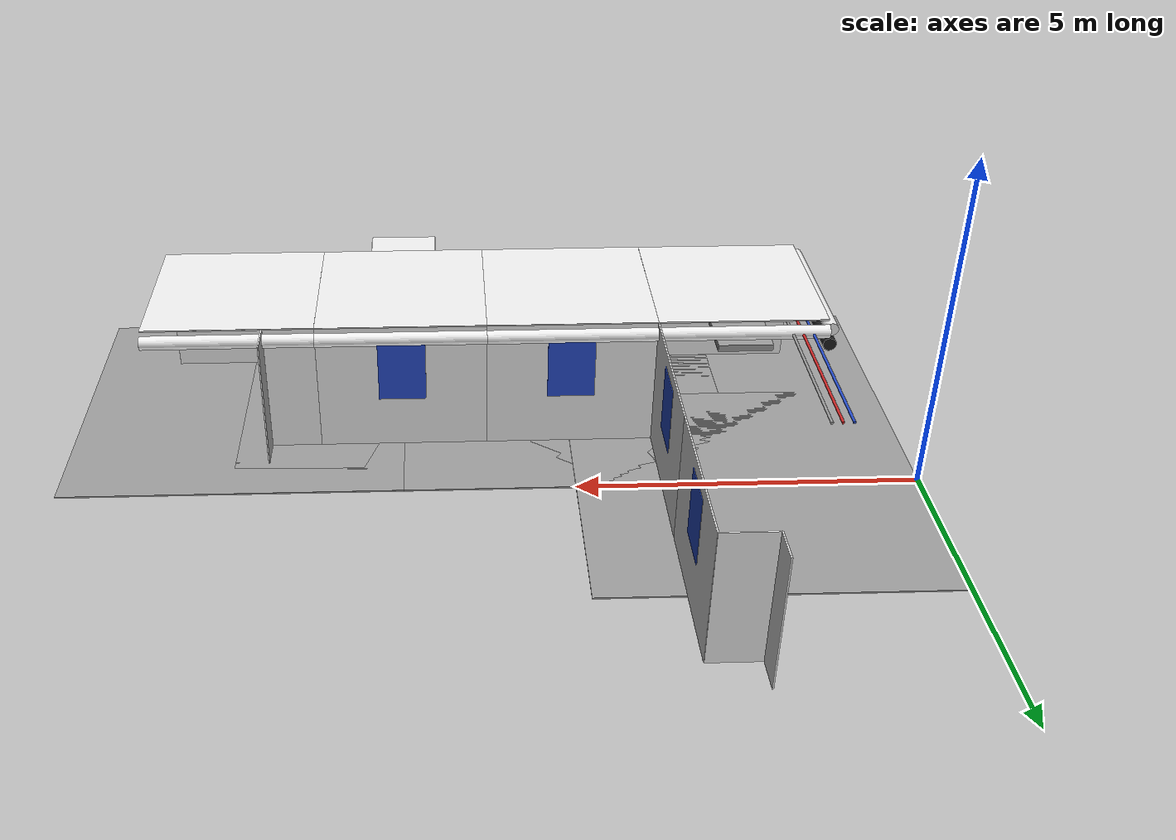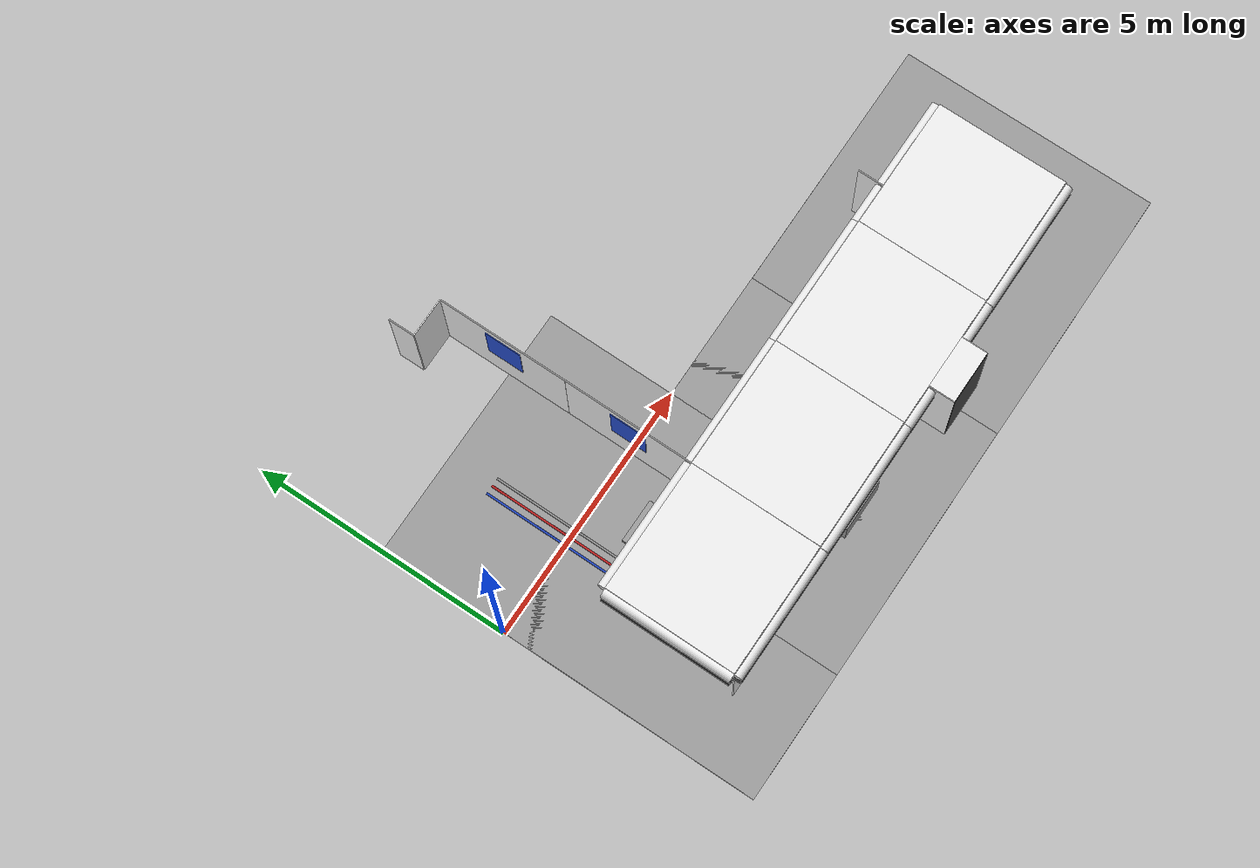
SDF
<sdf version="1.6">
 <world name="default">
  <model name="wall_front_1_1_0_2">
   <static>1</static>
   <pose>3.75 2.5 1.0 0.0 0.0 -1.57</pose>
   <link name="link">
    <collision name="collision"><geometry><box><size>2.5 0.02 2.0</size></box></geometry></collision>
    <visual name="visual">
     <material>
      <script><name>Gazebo/White</name><uri>file://media/materials/scripts/gazebo.material</uri></script>
     </material>
     <geometry><box><size>2.5 0.02 2.0</size></box></geometry>
    </visual>
   </link>
  </model>
  <model name="panel_1_1_0_2">
   <static>1</static>
   <pose>3.75 2.5 1.3 0.0 0.0 0.0</pose>
   <link name="link">
    <collision name="collision"><geometry><box><size>0.04 0.7 1</size></box></geometry></collision>
    <visual name="visual">
     <material>
      <script><name>Gazebo/Blue</name><uri>file://media/materials/scripts/gazebo.material</uri></script>
     </material>
     <geometry><box><size>0.04 0.7 1</size></box></geometry>
    </visual>
   </link>
  </model>
  <model name="wall_left_front_left_1_1_0_2">
   <static>1</static>
   <pose>3.375 3.75 1.0 0.0 0.0 0.0</pose>
   <link name="link">
    <collision name="collision"><geometry><box><size>0.75 0.02 2.0</size></box></geometry></collision>
    <visual name="visual">
     <material>
      <script><name>Gazebo/White</name><uri>file://media/materials/scripts/gazebo.material</uri></script>
     </material>
     <geometry><box><size>0.75 0.02 2.0</size></box></geometry>
    </visual>
   </link>
  </model>
  <model name="wall_left_inside_left_1_1_0_2">
   <static>1</static>
   <pose>3.0 4.0 1.0 0.0 0.0 -1.57</pose>
   <link name="link">
    <collision name="collision"><geometry><box><size>0.5 0.02 2</size></box></geometry></collision>
    <visual name="visual">
     <material>
      <script><name>Gazebo/White</name><uri>file://media/materials/scripts/gazebo.material</uri></script>
     </material>
     <geometry><box><size>0.5 0.02 2</size></box></geometry>
    </visual>
   </link>
  </model>
  <model name="wall_left_1_0_0_1">
   <static>1</static>
   <pose>3.75 0.0 1.0 0.0 0.0 4.71</pose>
   <link name="link">
    <collision name="collision"><geometry><box><size>2.5 0.02 2.0</size></box></geometry></collision>
    <visual name="visual">
     <material>
      <script><name>Gazebo/White</name><uri>file://media/materials/scripts/gazebo.material</uri></script>
     </material>
     <geometry><box><size>2.5 0.02 2.0</size></box></geometry>
    </visual>
   </link>
  </model>
  <model name="grey_pipe_right_1_0_0_1">
   <static>1</static>
   <pose>2.5 0.0 1.84 0.0 0.0 3.14</pose>
   <link name="link_0">
    <visual name="visual">
     <pose>0.7 0 0 1.57 0 0</pose>
     <geometry><cylinder><radius>0.02</radius><length>2.5</length></cylinder></geometry>
     <material>
      <script><uri>file://media/materials/scripts/gazebo.material</uri><name>Gazebo/Grey</name></script>
     </material>
    </visual>
    <collision name="collision">
     <pose>0.7 0 0 1.57 0 0</pose>
     <geometry><cylinder><radius>0.02</radius><length>2.5</length></cylinder></geometry>
    </collision>
   </link>
  </model>
  <model name="red_pipe_right_1_0_0_1">
   <static>1</static>
   <pose>2.5 0.0 1.84 0.0 0.0 3.14</pose>
   <link name="link_0">
    <visual name="visual">
     <pose>0.85 0 0 1.57 0 0</pose>
     <geometry><cylinder><radius>0.02</radius><length>2.5</length></cylinder></geometry>
     <material>
      <script><uri>file://media/materials/scripts/gazebo.material</uri><name>Gazebo/Red</name></script>
     </material>
    </visual>
    <collision name="collision">
     <pose>0.85 0 0 1.57 0 0</pose>
     <geometry><cylinder><radius>0.02</radius><length>2.5</length></cylinder></geometry>
    </collision>
   </link>
  </model>
  <model name="blue_pipe_right_1_0_0_1">
   <static>1</static>
   <pose>2.5 0.0 1.84 0.0 0.0 3.14</pose>
   <link name="link_0">
    <visual name="visual">
     <pose>1 0 0 1.57 0 0</pose>
     <geometry><cylinder><radius>0.02</radius><length>2.5</length></cylinder></geometry>
     <material>
      <script><uri>file://media/materials/scripts/gazebo.material</uri><name>Gazebo/Blue</name></script>
     </material>
    </visual>
    <collision name="collision">
     <pose>1 0 0 1.57 0 0</pose>
     <geometry><cylinder><radius>0.02</radius><length>2.5</length></cylinder></geometry>
    </collision>
   </link>
  </model>
  <model name="wall_bottom_1_0_0_1">
   <static>1</static>
   <pose>2.5 0.0 0.0 0.0 0.0 3.14</pose>
   <link name="link">
    <collision name="collision"><geometry><box><size>5.0 5.0 0.02</size></box></geometry></collision>
    <visual name="visual">
     <material>
      <script><name>Gazebo/Grey</name><uri>file://media/materials/scripts/gazebo.material</uri></script>
     </material>
     <geometry><box><size>5.0 5.0 0.02</size></box></geometry>
    </visual>
   </link>
  </model>
  <model name="panel_1_0_1_1">
   <static>1</static>
   <pose>3.75 0.0 1.3 0.0 0.0 3.14</pose>
   <link name="link">
    <collision name="collision"><geometry><box><size>0.04 0.7 1</size></box></geometry></collision>
    <visual name="visual">
     <material>
      <script><name>Gazebo/Blue</name><uri>file://media/materials/scripts/gazebo.material</uri></script>
     </material>
     <geometry><box><size>0.04 0.7 1</size></box></geometry>
    </visual>
   </link>
  </model>
  <model name="wall_front_1_-1_0_3">
   <static>1</static>
   <pose>2.5 -3.75 1.0 0.0 0.0 3.14</pose>
   <link name="link">
    <collision name="collision"><geometry><box><size>2.5 0.02 2.0</size></box></geometry></collision>
    <visual name="visual">
     <material>
      <script><name>Gazebo/White</name><uri>file://media/materials/scripts/gazebo.material</uri></script>
     </material>
     <geometry><box><size>2.5 0.02 2.0</size></box></geometry>
    </visual>
   </link>
  </model>
  <model name="wall_top_1_-1_0_3">
   <static>1</static>
   <pose>2.5 -2.5 2.0 1.57 0.0 3.14</pose>
   <link name="link">
    <collision name="collision"><geometry><box><size>2.5 0.02 2.5</size></box></geometry></collision>
    <visual name="visual">
     <material>
      <script><name>Gazebo/White</name><uri>file://media/materials/scripts/gazebo.material</uri></script>
     </material>
     <geometry><box><size>2.5 0.02 2.5</size></box></geometry>
    </visual>
   </link>
  </model>
  <model name="ceiling_1_1_-1_0_3">
   <pose>2.5 -1.5 1.7 0.0 0.0 3.14</pose>
   <link name="link_1">
    <visual name="visual">
     <geometry><box><size>0.8 1 0.1</size></box></geometry>
     <material>
      <script><uri>file://media/materials/scripts/gazebo.material</uri><name>Gazebo/Grey</name></script>
     </material>
    </visual>
    <collision name="collision"><geometry><box><size>0.8 1 0.1</size></box></geometry></collision>
   </link>
   <static>1</static>
  </model>
  <model name="ceiling_1_1_-1_1_3">
   <pose>3.5 -2.5 1.7 0.0 0.0 4.71</pose>
   <link name="link_1">
    <visual name="visual">
     <geometry><box><size>0.8 1 0.1</size></box></geometry>
     <material>
      <script><uri>file://media/materials/scripts/gazebo.material</uri><name>Gazebo/Grey</name></script>
     </material>
    </visual>
    <collision name="collision"><geometry><box><size>0.8 1 0.1</size></box></geometry></collision>
   </link>
   <static>1</static>
  </model>
  <model name="white_pipe_left_1_-1_0_3">
   <static>1</static>
   <pose>2.5 -2.5 1.84 0.0 0.0 3.14</pose>
   <link name="link_0">
    <visual name="visual">
     <pose>-1.3 0 0 1.57 0 0</pose>
     <geometry><cylinder><radius>0.1</radius><length>2.5</length></cylinder></geometry>
     <material>
      <script><uri>file://media/materials/scripts/gazebo.material</uri><name>Gazebo/White</name></script>
     </material>
    </visual>
    <collision name="collision">
     <pose>-1.3 0 0 1.57 0 0</pose>
     <geometry><cylinder><radius>0.1</radius><length>2.5</length></cylinder></geometry>
    </collision>
   </link>
  </model>
  <model name="white_pipe_right_1_-1_0_3">
   <static>1</static>
   <pose>2.5 -2.5 1.84 0.0 0.0 3.14</pose>
   <link name="link_0">
    <visual name="visual">
     <pose>1.3 0 0 1.57 0 0</pose>
     <geometry><cylinder><radius>0.1</radius><length>2.5</length></cylinder></geometry>
     <material>
      <script><uri>file://media/materials/scripts/gazebo.material</uri><name>Gazebo/White</name></script>
     </material>
    </visual>
    <collision name="collision">
     <pose>1.3 0 0 1.57 0 0</pose>
     <geometry><cylinder><radius>0.1</radius><length>2.5</length></cylinder></geometry>
    </collision>
   </link>
  </model>
  <model name="black_pipe_right_1_-1_0_3">
   <static>1</static>
   <pose>2.5 -2.5 1.84 0.0 0.0 3.14</pose>
   <link name="link_0">
    <visual name="visual">
     <pose>1.3 0 -0.25 1.57 0 0</pose>
     <geometry><cylinder><radius>0.1</radius><length>2.5</length></cylinder></geometry>
     <material>
      <script><uri>file://media/materials/scripts/gazebo.material</uri><name>Gazebo/Black</name></script>
     </material>
    </visual>
    <collision name="collision">
     <pose>1.3 0 -0.25 1.57 0 0</pose>
     <geometry><cylinder><radius>0.1</radius><length>2.5</length></cylinder></geometry>
    </collision>
   </link>
  </model>
  <model name="grey_pipe_right_1_-1_0_3">
   <static>1</static>
   <pose>2.5 -2.5 1.84 0.0 0.0 3.14</pose>
   <link name="link_0">
    <visual name="visual">
     <pose>0.7 0 0 1.57 0 0</pose>
     <geometry><cylinder><radius>0.02</radius><length>2.5</length></cylinder></geometry>
     <material>
      <script><uri>file://media/materials/scripts/gazebo.material</uri><name>Gazebo/Grey</name></script>
     </material>
    </visual>
    <collision name="collision">
     <pose>0.7 0 0 1.57 0 0</pose>
     <geometry><cylinder><radius>0.02</radius><length>2.5</length></cylinder></geometry>
    </collision>
   </link>
  </model>
  <model name="red_pipe_right_1_-1_0_3">
   <static>1</static>
   <pose>2.5 -2.5 1.84 0.0 0.0 3.14</pose>
   <link name="link_0">
    <visual name="visual">
     <pose>0.85 0 0 1.57 0 0</pose>
     <geometry><cylinder><radius>0.02</radius><length>2.5</length></cylinder></geometry>
     <material>
      <script><uri>file://media/materials/scripts/gazebo.material</uri><name>Gazebo/Red</name></script>
     </material>
    </visual>
    <collision name="collision">
     <pose>0.85 0 0 1.57 0 0</pose>
     <geometry><cylinder><radius>0.02</radius><length>2.5</length></cylinder></geometry>
    </collision>
   </link>
  </model>
  <model name="blue_pipe_right_1_-1_0_3">
   <static>1</static>
   <pose>2.5 -2.5 1.84 0.0 0.0 3.14</pose>
   <link name="link_0">
    <visual name="visual">
     <pose>1 0 0 1.57 0 0</pose>
     <geometry><cylinder><radius>0.02</radius><length>2.5</length></cylinder></geometry>
     <material>
      <script><uri>file://media/materials/scripts/gazebo.material</uri><name>Gazebo/Blue</name></script>
     </material>
    </visual>
    <collision name="collision">
     <pose>1 0 0 1.57 0 0</pose>
     <geometry><cylinder><radius>0.02</radius><length>2.5</length></cylinder></geometry>
    </collision>
   </link>
  </model>
  <model name="white_pipe_left_1_1_-1_0_3">
   <static>1</static>
   <pose>2.5 -2.5 1.84 0.0 0.0 4.71</pose>
   <link name="link_0">
    <visual name="visual">
     <pose>-1.3 0 0 1.57 0 0</pose>
     <geometry><cylinder><radius>0.1</radius><length>2.5</length></cylinder></geometry>
     <material>
      <script><uri>file://media/materials/scripts/gazebo.material</uri><name>Gazebo/White</name></script>
     </material>
    </visual>
    <collision name="collision">
     <pose>-1.3 0 0 1.57 0 0</pose>
     <geometry><cylinder><radius>0.1</radius><length>2.5</length></cylinder></geometry>
    </collision>
   </link>
  </model>
  <model name="white_pipe_right_1_1_-1_0_3">
   <static>1</static>
   <pose>2.5 -2.5 1.84 0.0 0.0 4.71</pose>
   <link name="link_0">
    <visual name="visual">
     <pose>1.3 0 0 1.57 0 0</pose>
     <geometry><cylinder><radius>0.1</radius><length>2.5</length></cylinder></geometry>
     <material>
      <script><uri>file://media/materials/scripts/gazebo.material</uri><name>Gazebo/White</name></script>
     </material>
    </visual>
    <collision name="collision">
     <pose>1.3 0 0 1.57 0 0</pose>
     <geometry><cylinder><radius>0.1</radius><length>2.5</length></cylinder></geometry>
    </collision>
   </link>
  </model>
  <model name="black_pipe_right_1_1_-1_0_3">
   <static>1</static>
   <pose>2.5 -2.5 1.84 0.0 0.0 4.71</pose>
   <link name="link_0">
    <visual name="visual">
     <pose>1.3 0 -0.25 1.57 0 0</pose>
     <geometry><cylinder><radius>0.1</radius><length>2.5</length></cylinder></geometry>
     <material>
      <script><uri>file://media/materials/scripts/gazebo.material</uri><name>Gazebo/Black</name></script>
     </material>
    </visual>
    <collision name="collision">
     <pose>1.3 0 -0.25 1.57 0 0</pose>
     <geometry><cylinder><radius>0.1</radius><length>2.5</length></cylinder></geometry>
    </collision>
   </link>
  </model>
  <model name="grey_pipe_right_1_1_-1_0_3">
   <static>1</static>
   <pose>2.5 -2.5 1.84 0.0 0.0 4.71</pose>
   <link name="link_0">
    <visual name="visual">
     <pose>0.7 0 0 1.57 0 0</pose>
     <geometry><cylinder><radius>0.02</radius><length>2.5</length></cylinder></geometry>
     <material>
      <script><uri>file://media/materials/scripts/gazebo.material</uri><name>Gazebo/Grey</name></script>
     </material>
    </visual>
    <collision name="collision">
     <pose>0.7 0 0 1.57 0 0</pose>
     <geometry><cylinder><radius>0.02</radius><length>2.5</length></cylinder></geometry>
    </collision>
   </link>
  </model>
  <model name="red_pipe_right_1_1_-1_0_3">
   <static>1</static>
   <pose>2.5 -2.5 1.84 0.0 0.0 4.71</pose>
   <link name="link_0">
    <visual name="visual">
     <pose>0.85 0 0 1.57 0 0</pose>
     <geometry><cylinder><radius>0.02</radius><length>2.5</length></cylinder></geometry>
     <material>
      <script><uri>file://media/materials/scripts/gazebo.material</uri><name>Gazebo/Red</name></script>
     </material>
    </visual>
    <collision name="collision">
     <pose>0.85 0 0 1.57 0 0</pose>
     <geometry><cylinder><radius>0.02</radius><length>2.5</length></cylinder></geometry>
    </collision>
   </link>
  </model>
  <model name="blue_pipe_right_1_1_-1_0_3">
   <static>1</static>
   <pose>2.5 -2.5 1.84 0.0 0.0 4.71</pose>
   <link name="link_0">
    <visual name="visual">
     <pose>1 0 0 1.57 0 0</pose>
     <geometry><cylinder><radius>0.02</radius><length>2.5</length></cylinder></geometry>
     <material>
      <script><uri>file://media/materials/scripts/gazebo.material</uri><name>Gazebo/Blue</name></script>
     </material>
    </visual>
    <collision name="collision">
     <pose>1 0 0 1.57 0 0</pose>
     <geometry><cylinder><radius>0.02</radius><length>2.5</length></cylinder></geometry>
    </collision>
   </link>
  </model>
  <model name="wall_bottom_1_-1_0_3">
   <static>1</static>
   <pose>2.5 -2.5 0.0 0.0 0.0 3.14</pose>
   <link name="link">
    <collision name="collision"><geometry><box><size>5.0 5.0 0.02</size></box></geometry></collision>
    <visual name="visual">
     <material>
      <script><name>Gazebo/Grey</name><uri>file://media/materials/scripts/gazebo.material</uri></script>
     </material>
     <geometry><box><size>5.0 5.0 0.02</size></box></geometry>
    </visual>
   </link>
  </model>
  <model name="wall_right_2_-1_0_1">
   <static>1</static>
   <pose>5.0 -3.75 1.0 0.0 0.0 0.0</pose>
   <link name="link">
    <collision name="collision"><geometry><box><size>2.5 0.02 2.0</size></box></geometry></collision>
    <visual name="visual">
     <material>
      <script><name>Gazebo/White</name><uri>file://media/materials/scripts/gazebo.material</uri></script>
     </material>
     <geometry><box><size>2.5 0.02 2.0</size></box></geometry>
    </visual>
   </link>
  </model>
  <model name="wall_left_2_-1_0_1">
   <static>1</static>
   <pose>5.0 -1.25 1.0 0.0 0.0 0.0</pose>
   <link name="link">
    <collision name="collision"><geometry><box><size>2.5 0.02 2.0</size></box></geometry></collision>
    <visual name="visual">
     <material>
      <script><name>Gazebo/White</name><uri>file://media/materials/scripts/gazebo.material</uri></script>
     </material>
     <geometry><box><size>2.5 0.02 2.0</size></box></geometry>
    </visual>
   </link>
  </model>
  <model name="wall_top_2_-1_0_1">
   <static>1</static>
   <pose>5.0 -2.5 2.0 1.57 0.0 -1.57</pose>
   <link name="link">
    <collision name="collision"><geometry><box><size>2.5 0.02 2.5</size></box></geometry></collision>
    <visual name="visual">
     <material>
      <script><name>Gazebo/White</name><uri>file://media/materials/scripts/gazebo.material</uri></script>
     </material>
     <geometry><box><size>2.5 0.02 2.5</size></box></geometry>
    </visual>
   </link>
  </model>
  <model name="ceiling_1_2_-1_0_1">
   <pose>5.0 -2.5 1.7 0.0 0.0 -1.57</pose>
   <link name="link_1">
    <visual name="visual">
     <geometry><box><size>0.8 1 0.1</size></box></geometry>
     <material>
      <script><uri>file://media/materials/scripts/gazebo.material</uri><name>Gazebo/Grey</name></script>
     </material>
    </visual>
    <collision name="collision"><geometry><box><size>0.8 1 0.1</size></box></geometry></collision>
   </link>
   <static>1</static>
  </model>
  <model name="ceiling_1_2_-1_1_1">
   <pose>4.0 -2.5 1.7 0.0 0.0 -1.57</pose>
   <link name="link_1">
    <visual name="visual">
     <geometry><box><size>0.8 1 0.1</size></box></geometry>
     <material>
      <script><uri>file://media/materials/scripts/gazebo.material</uri><name>Gazebo/Grey</name></script>
     </material>
    </visual>
    <collision name="collision"><geometry><box><size>0.8 1 0.1</size></box></geometry></collision>
   </link>
   <static>1</static>
  </model>
  <model name="ceiling_1_2_-1_2_1">
   <pose>6.0 -2.5 1.7 0.0 0.0 -1.57</pose>
   <link name="link_1">
    <visual name="visual">
     <geometry><box><size>0.8 1 0.1</size></box></geometry>
     <material>
      <script><uri>file://media/materials/scripts/gazebo.material</uri><name>Gazebo/Grey</name></script>
     </material>
    </visual>
    <collision name="collision"><geometry><box><size>0.8 1 0.1</size></box></geometry></collision>
   </link>
   <static>1</static>
  </model>
  <model name="white_pipe_left_2_-1_0_1">
   <static>1</static>
   <pose>5.0 -2.5 1.84 0.0 0.0 -1.57</pose>
   <link name="link_0">
    <visual name="visual">
     <pose>-1.3 0 0 1.57 0 0</pose>
     <geometry><cylinder><radius>0.1</radius><length>2.5</length></cylinder></geometry>
     <material>
      <script><uri>file://media/materials/scripts/gazebo.material</uri><name>Gazebo/White</name></script>
     </material>
    </visual>
    <collision name="collision">
     <pose>-1.3 0 0 1.57 0 0</pose>
     <geometry><cylinder><radius>0.1</radius><length>2.5</length></cylinder></geometry>
    </collision>
   </link>
  </model>
  <model name="white_pipe_right_2_-1_0_1">
   <static>1</static>
   <pose>5.0 -2.5 1.84 0.0 0.0 -1.57</pose>
   <link name="link_0">
    <visual name="visual">
     <pose>1.3 0 0 1.57 0 0</pose>
     <geometry><cylinder><radius>0.1</radius><length>2.5</length></cylinder></geometry>
     <material>
      <script><uri>file://media/materials/scripts/gazebo.material</uri><name>Gazebo/White</name></script>
     </material>
    </visual>
    <collision name="collision">
     <pose>1.3 0 0 1.57 0 0</pose>
     <geometry><cylinder><radius>0.1</radius><length>2.5</length></cylinder></geometry>
    </collision>
   </link>
  </model>
  <model name="black_pipe_right_2_-1_0_1">
   <static>1</static>
   <pose>5.0 -2.5 1.84 0.0 0.0 -1.57</pose>
   <link name="link_0">
    <visual name="visual">
     <pose>1.3 0 -0.25 1.57 0 0</pose>
     <geometry><cylinder><radius>0.1</radius><length>2.5</length></cylinder></geometry>
     <material>
      <script><uri>file://media/materials/scripts/gazebo.material</uri><name>Gazebo/Black</name></script>
     </material>
    </visual>
    <collision name="collision">
     <pose>1.3 0 -0.25 1.57 0 0</pose>
     <geometry><cylinder><radius>0.1</radius><length>2.5</length></cylinder></geometry>
    </collision>
   </link>
  </model>
  <model name="grey_pipe_right_2_-1_0_1">
   <static>1</static>
   <pose>5.0 -2.5 1.84 0.0 0.0 -1.57</pose>
   <link name="link_0">
    <visual name="visual">
     <pose>0.7 0 0 1.57 0 0</pose>
     <geometry><cylinder><radius>0.02</radius><length>2.5</length></cylinder></geometry>
     <material>
      <script><uri>file://media/materials/scripts/gazebo.material</uri><name>Gazebo/Grey</name></script>
     </material>
    </visual>
    <collision name="collision">
     <pose>0.7 0 0 1.57 0 0</pose>
     <geometry><cylinder><radius>0.02</radius><length>2.5</length></cylinder></geometry>
    </collision>
   </link>
  </model>
  <model name="red_pipe_right_2_-1_0_1">
   <static>1</static>
   <pose>5.0 -2.5 1.84 0.0 0.0 -1.57</pose>
   <link name="link_0">
    <visual name="visual">
     <pose>0.85 0 0 1.57 0 0</pose>
     <geometry><cylinder><radius>0.02</radius><length>2.5</length></cylinder></geometry>
     <material>
      <script><uri>file://media/materials/scripts/gazebo.material</uri><name>Gazebo/Red</name></script>
     </material>
    </visual>
    <collision name="collision">
     <pose>0.85 0 0 1.57 0 0</pose>
     <geometry><cylinder><radius>0.02</radius><length>2.5</length></cylinder></geometry>
    </collision>
   </link>
  </model>
  <model name="blue_pipe_right_2_-1_0_1">
   <static>1</static>
   <pose>5.0 -2.5 1.84 0.0 0.0 -1.57</pose>
   <link name="link_0">
    <visual name="visual">
     <pose>1 0 0 1.57 0 0</pose>
     <geometry><cylinder><radius>0.02</radius><length>2.5</length></cylinder></geometry>
     <material>
      <script><uri>file://media/materials/scripts/gazebo.material</uri><name>Gazebo/Blue</name></script>
     </material>
    </visual>
    <collision name="collision">
     <pose>1 0 0 1.57 0 0</pose>
     <geometry><cylinder><radius>0.02</radius><length>2.5</length></cylinder></geometry>
    </collision>
   </link>
  </model>
  <model name="wall_bottom_2_-1_0_1">
   <static>1</static>
   <pose>5.0 -2.5 0.0 0.0 0.0 -1.57</pose>
   <link name="link">
    <collision name="collision"><geometry><box><size>5.0 5.0 0.02</size></box></geometry></collision>
    <visual name="visual">
     <material>
      <script><name>Gazebo/Grey</name><uri>file://media/materials/scripts/gazebo.material</uri></script>
     </material>
     <geometry><box><size>5.0 5.0 0.02</size></box></geometry>
    </visual>
   </link>
  </model>
  <model name="panel_2_-1_0_1">
   <static>1</static>
   <pose>5.0 -3.75 0.44 0.0 0.0 -1.57</pose>
   <link name="link">
    <collision name="collision"><geometry><box><size>0.2 1 0.6</size></box></geometry></collision>
    <visual name="visual">
     <material>
      <script><name>Gazebo/Grey</name><uri>file://media/materials/scripts/gazebo.material</uri></script>
     </material>
     <geometry><box><size>0.2 1 0.6</size></box></geometry>
    </visual>
   </link>
  </model>
  <model name="panel_2_-1_1_1">
   <static>1</static>
   <pose>5.0 -1.25 1.3 0.0 0.0 -1.57</pose>
   <link name="link">
    <collision name="collision"><geometry><box><size>0.04 0.7 1</size></box></geometry></collision>
    <visual name="visual">
     <material>
      <script><name>Gazebo/Blue</name><uri>file://media/materials/scripts/gazebo.material</uri></script>
     </material>
     <geometry><box><size>0.04 0.7 1</size></box></geometry>
    </visual>
   </link>
  </model>
  <model name="wall_left_3_-1_0_1">
   <static>1</static>
   <pose>7.5 -1.25 1.0 0.0 0.0 0.0</pose>
   <link name="link">
    <collision name="collision"><geometry><box><size>2.5 0.02 2.0</size></box></geometry></collision>
    <visual name="visual">
     <material>
      <script><name>Gazebo/White</name><uri>file://media/materials/scripts/gazebo.material</uri></script>
     </material>
     <geometry><box><size>2.5 0.02 2.0</size></box></geometry>
    </visual>
   </link>
  </model>
  <model name="wall_top_3_-1_0_1">
   <static>1</static>
   <pose>7.5 -2.5 2.0 1.57 0.0 -1.57</pose>
   <link name="link">
    <collision name="collision"><geometry><box><size>2.5 0.02 2.5</size></box></geometry></collision>
    <visual name="visual">
     <material>
      <script><name>Gazebo/White</name><uri>file://media/materials/scripts/gazebo.material</uri></script>
     </material>
     <geometry><box><size>2.5 0.02 2.5</size></box></geometry>
    </visual>
   </link>
  </model>
  <model name="ceiling_1_3_-1_0_1">
   <pose>7.5 -2.5 1.7 0.0 0.0 -1.57</pose>
   <link name="link_1">
    <visual name="visual">
     <geometry><box><size>0.8 1 0.1</size></box></geometry>
     <material>
      <script><uri>file://media/materials/scripts/gazebo.material</uri><name>Gazebo/Grey</name></script>
     </material>
    </visual>
    <collision name="collision"><geometry><box><size>0.8 1 0.1</size></box></geometry></collision>
   </link>
   <static>1</static>
  </model>
  <model name="ceiling_1_3_-1_1_1">
   <pose>6.5 -2.5 1.7 0.0 0.0 -1.57</pose>
   <link name="link_1">
    <visual name="visual">
     <geometry><box><size>0.8 1 0.1</size></box></geometry>
     <material>
      <script><uri>file://media/materials/scripts/gazebo.material</uri><name>Gazebo/Grey</name></script>
     </material>
    </visual>
    <collision name="collision"><geometry><box><size>0.8 1 0.1</size></box></geometry></collision>
   </link>
   <static>1</static>
  </model>
  <model name="ceiling_1_3_-1_2_1">
   <pose>8.5 -2.5 1.7 0.0 0.0 -1.57</pose>
   <link name="link_1">
    <visual name="visual">
     <geometry><box><size>0.8 1 0.1</size></box></geometry>
     <material>
      <script><uri>file://media/materials/scripts/gazebo.material</uri><name>Gazebo/Grey</name></script>
     </material>
    </visual>
    <collision name="collision"><geometry><box><size>0.8 1 0.1</size></box></geometry></collision>
   </link>
   <static>1</static>
  </model>
  <model name="white_pipe_left_3_-1_0_1">
   <static>1</static>
   <pose>7.5 -2.5 1.84 0.0 0.0 -1.57</pose>
   <link name="link_0">
    <visual name="visual">
     <pose>-1.3 0 0 1.57 0 0</pose>
     <geometry><cylinder><radius>0.1</radius><length>2.5</length></cylinder></geometry>
     <material>
      <script><uri>file://media/materials/scripts/gazebo.material</uri><name>Gazebo/White</name></script>
     </material>
    </visual>
    <collision name="collision">
     <pose>-1.3 0 0 1.57 0 0</pose>
     <geometry><cylinder><radius>0.1</radius><length>2.5</length></cylinder></geometry>
    </collision>
   </link>
  </model>
  <model name="white_pipe_right_3_-1_0_1">
   <static>1</static>
   <pose>7.5 -2.5 1.84 0.0 0.0 -1.57</pose>
   <link name="link_0">
    <visual name="visual">
     <pose>1.3 0 0 1.57 0 0</pose>
     <geometry><cylinder><radius>0.1</radius><length>2.5</length></cylinder></geometry>
     <material>
      <script><uri>file://media/materials/scripts/gazebo.material</uri><name>Gazebo/White</name></script>
     </material>
    </visual>
    <collision name="collision">
     <pose>1.3 0 0 1.57 0 0</pose>
     <geometry><cylinder><radius>0.1</radius><length>2.5</length></cylinder></geometry>
    </collision>
   </link>
  </model>
  <model name="black_pipe_right_3_-1_0_1">
   <static>1</static>
   <pose>7.5 -2.5 1.84 0.0 0.0 -1.57</pose>
   <link name="link_0">
    <visual name="visual">
     <pose>1.3 0 -0.25 1.57 0 0</pose>
     <geometry><cylinder><radius>0.1</radius><length>2.5</length></cylinder></geometry>
     <material>
      <script><uri>file://media/materials/scripts/gazebo.material</uri><name>Gazebo/Black</name></script>
     </material>
    </visual>
    <collision name="collision">
     <pose>1.3 0 -0.25 1.57 0 0</pose>
     <geometry><cylinder><radius>0.1</radius><length>2.5</length></cylinder></geometry>
    </collision>
   </link>
  </model>
  <model name="grey_pipe_right_3_-1_0_1">
   <static>1</static>
   <pose>7.5 -2.5 1.84 0.0 0.0 -1.57</pose>
   <link name="link_0">
    <visual name="visual">
     <pose>0.7 0 0 1.57 0 0</pose>
     <geometry><cylinder><radius>0.02</radius><length>2.5</length></cylinder></geometry>
     <material>
      <script><uri>file://media/materials/scripts/gazebo.material</uri><name>Gazebo/Grey</name></script>
     </material>
    </visual>
    <collision name="collision">
     <pose>0.7 0 0 1.57 0 0</pose>
     <geometry><cylinder><radius>0.02</radius><length>2.5</length></cylinder></geometry>
    </collision>
   </link>
  </model>
  <model name="red_pipe_right_3_-1_0_1">
   <static>1</static>
   <pose>7.5 -2.5 1.84 0.0 0.0 -1.57</pose>
   <link name="link_0">
    <visual name="visual">
     <pose>0.85 0 0 1.57 0 0</pose>
     <geometry><cylinder><radius>0.02</radius><length>2.5</length></cylinder></geometry>
     <material>
      <script><uri>file://media/materials/scripts/gazebo.material</uri><name>Gazebo/Red</name></script>
     </material>
    </visual>
    <collision name="collision">
     <pose>0.85 0 0 1.57 0 0</pose>
     <geometry><cylinder><radius>0.02</radius><length>2.5</length></cylinder></geometry>
    </collision>
   </link>
  </model>
  <model name="blue_pipe_right_3_-1_0_1">
   <static>1</static>
   <pose>7.5 -2.5 1.84 0.0 0.0 -1.57</pose>
   <link name="link_0">
    <visual name="visual">
     <pose>1 0 0 1.57 0 0</pose>
     <geometry><cylinder><radius>0.02</radius><length>2.5</length></cylinder></geometry>
     <material>
      <script><uri>file://media/materials/scripts/gazebo.material</uri><name>Gazebo/Blue</name></script>
     </material>
    </visual>
    <collision name="collision">
     <pose>1 0 0 1.57 0 0</pose>
     <geometry><cylinder><radius>0.02</radius><length>2.5</length></cylinder></geometry>
    </collision>
   </link>
  </model>
  <model name="panel_3_-1_0_1">
   <static>1</static>
   <pose>7.5 -1.25 1.3 0.0 0.0 -1.57</pose>
   <link name="link">
    <collision name="collision"><geometry><box><size>0.04 0.7 1</size></box></geometry></collision>
    <visual name="visual">
     <material>
      <script><name>Gazebo/Blue</name><uri>file://media/materials/scripts/gazebo.material</uri></script>
     </material>
     <geometry><box><size>0.04 0.7 1</size></box></geometry>
    </visual>
   </link>
  </model>
  <model name="wall_right_front_left_3_-1_0_1">
   <static>1</static>
   <pose>8.375 -3.75 1.0 0.0 0.0 0.0</pose>
   <link name="link">
    <collision name="collision"><geometry><box><size>0.75 0.02 2.0</size></box></geometry></collision>
    <visual name="visual">
     <material>
      <script><name>Gazebo/White</name><uri>file://media/materials/scripts/gazebo.material</uri></script>
     </material>
     <geometry><box><size>0.75 0.02 2.0</size></box></geometry>
    </visual>
   </link>
  </model>
  <model name="wall_right_front_right_3_-1_0_1">
   <static>1</static>
   <pose>6.625 -3.75 1.0 0.0 0.0 0.0</pose>
   <link name="link">
    <collision name="collision"><geometry><box><size>0.75 0.02 2.0</size></box></geometry></collision>
    <visual name="visual">
     <material>
      <script><name>Gazebo/White</name><uri>file://media/materials/scripts/gazebo.material</uri></script>
     </material>
     <geometry><box><size>0.75 0.02 2.0</size></box></geometry>
    </visual>
   </link>
  </model>
  <model name="wall_right_front_up_3_-1_0_1">
   <static>1</static>
   <pose>7.5 -3.75 2.0 0.0 0.0 0.0</pose>
   <link name="link">
    <collision name="collision"><geometry><box><size>1.0 0.02 0.001</size></box></geometry></collision>
    <visual name="visual">
     <material>
      <script><name>Gazebo/White</name><uri>file://media/materials/scripts/gazebo.material</uri></script>
     </material>
     <geometry><box><size>1.0 0.02 0.001</size></box></geometry>
    </visual>
   </link>
  </model>
  <model name="wall_right_inside_back_3_-1_0_1">
   <static>1</static>
   <pose>7.5 -4.25 1.0 0.0 0.0 0.0</pose>
   <link name="link">
    <collision name="collision"><geometry><box><size>1 0.02 2</size></box></geometry></collision>
    <visual name="visual">
     <material>
      <script><name>Gazebo/DarkGrey</name><uri>file://media/materials/scripts/gazebo.material</uri></script>
     </material>
     <geometry><box><size>1 0.02 2</size></box></geometry>
    </visual>
   </link>
  </model>
  <model name="wall_right_inside_left_3_-1_0_1">
   <static>1</static>
   <pose>8.0 -4.0 1.0 0.0 0.0 -1.57</pose>
   <link name="link">
    <collision name="collision"><geometry><box><size>0.5 0.02 2</size></box></geometry></collision>
    <visual name="visual">
     <material>
      <script><name>Gazebo/White</name><uri>file://media/materials/scripts/gazebo.material</uri></script>
     </material>
     <geometry><box><size>0.5 0.02 2</size></box></geometry>
    </visual>
   </link>
  </model>
  <model name="wall_right_inside_right_3_-1_0_1">
   <static>1</static>
   <pose>7.0 -4.0 1.0 0.0 0.0 -1.57</pose>
   <link name="link">
    <collision name="collision"><geometry><box><size>0.5 0.02 2</size></box></geometry></collision>
    <visual name="visual">
     <material>
      <script><name>Gazebo/White</name><uri>file://media/materials/scripts/gazebo.material</uri></script>
     </material>
     <geometry><box><size>0.5 0.02 2</size></box></geometry>
    </visual>
   </link>
  </model>
  <model name="wall_right_inside_top_3_-1_0_1">
   <static>1</static>
   <pose>7.5 -4.0 2.0 1.57 0.0 0.0</pose>
   <link name="link">
    <collision name="collision"><geometry><box><size>1 0.02 0.5</size></box></geometry></collision>
    <visual name="visual">
     <material>
      <script><name>Gazebo/White</name><uri>file://media/materials/scripts/gazebo.material</uri></script>
     </material>
     <geometry><box><size>1 0.02 0.5</size></box></geometry>
    </visual>
   </link>
  </model>
  <model name="wall_bottom_3_-1_0_1">
   <static>1</static>
   <pose>7.5 -2.5 0.0 0.0 0.0 -1.57</pose>
   <link name="link">
    <collision name="collision"><geometry><box><size>5.0 5.0 0.02</size></box></geometry></collision>
    <visual name="visual">
     <material>
      <script><name>Gazebo/Grey</name><uri>file://media/materials/scripts/gazebo.material</uri></script>
     </material>
     <geometry><box><size>5.0 5.0 0.02</size></box></geometry>
    </visual>
   </link>
  </model>
  <model name="wall_right_4_-1_0_1">
   <static>1</static>
   <pose>10.0 -3.75 1.0 0.0 0.0 0.0</pose>
   <link name="link">
    <collision name="collision"><geometry><box><size>2.5 0.02 2.0</size></box></geometry></collision>
    <visual name="visual">
     <material>
      <script><name>Gazebo/White</name><uri>file://media/materials/scripts/gazebo.material</uri></script>
     </material>
     <geometry><box><size>2.5 0.02 2.0</size></box></geometry>
    </visual>
   </link>
  </model>
  <model name="wall_top_4_-1_0_1">
   <static>1</static>
   <pose>10.0 -2.5 2.0 1.57 0.0 -1.57</pose>
   <link name="link">
    <collision name="collision"><geometry><box><size>2.5 0.02 2.5</size></box></geometry></collision>
    <visual name="visual">
     <material>
      <script><name>Gazebo/White</name><uri>file://media/materials/scripts/gazebo.material</uri></script>
     </material>
     <geometry><box><size>2.5 0.02 2.5</size></box></geometry>
    </visual>
   </link>
  </model>
  <model name="ceiling_1_4_-1_0_1">
   <pose>10.0 -2.5 1.7 0.0 0.0 -1.57</pose>
   <link name="link_1">
    <visual name="visual">
     <geometry><box><size>0.8 1 0.1</size></box></geometry>
     <material>
      <script><uri>file://media/materials/scripts/gazebo.material</uri><name>Gazebo/Grey</name></script>
     </material>
    </visual>
    <collision name="collision"><geometry><box><size>0.8 1 0.1</size></box></geometry></collision>
   </link>
   <static>1</static>
  </model>
  <model name="ceiling_1_4_-1_1_1">
   <pose>9.0 -2.5 1.7 0.0 0.0 -1.57</pose>
   <link name="link_1">
    <visual name="visual">
     <geometry><box><size>0.8 1 0.1</size></box></geometry>
     <material>
      <script><uri>file://media/materials/scripts/gazebo.material</uri><name>Gazebo/Grey</name></script>
     </material>
    </visual>
    <collision name="collision"><geometry><box><size>0.8 1 0.1</size></box></geometry></collision>
   </link>
   <static>1</static>
  </model>
  <model name="white_pipe_left_4_-1_0_1">
   <static>1</static>
   <pose>10.0 -2.5 1.84 0.0 0.0 -1.57</pose>
   <link name="link_0">
    <visual name="visual">
     <pose>-1.3 0 0 1.57 0 0</pose>
     <geometry><cylinder><radius>0.1</radius><length>2.5</length></cylinder></geometry>
     <material>
      <script><uri>file://media/materials/scripts/gazebo.material</uri><name>Gazebo/White</name></script>
     </material>
    </visual>
    <collision name="collision">
     <pose>-1.3 0 0 1.57 0 0</pose>
     <geometry><cylinder><radius>0.1</radius><length>2.5</length></cylinder></geometry>
    </collision>
   </link>
  </model>
  <model name="white_pipe_right_4_-1_0_1">
   <static>1</static>
   <pose>10.0 -2.5 1.84 0.0 0.0 -1.57</pose>
   <link name="link_0">
    <visual name="visual">
     <pose>1.3 0 0 1.57 0 0</pose>
     <geometry><cylinder><radius>0.1</radius><length>2.5</length></cylinder></geometry>
     <material>
      <script><uri>file://media/materials/scripts/gazebo.material</uri><name>Gazebo/White</name></script>
     </material>
    </visual>
    <collision name="collision">
     <pose>1.3 0 0 1.57 0 0</pose>
     <geometry><cylinder><radius>0.1</radius><length>2.5</length></cylinder></geometry>
    </collision>
   </link>
  </model>
  <model name="black_pipe_right_4_-1_0_1">
   <static>1</static>
   <pose>10.0 -2.5 1.84 0.0 0.0 -1.57</pose>
   <link name="link_0">
    <visual name="visual">
     <pose>1.3 0 -0.25 1.57 0 0</pose>
     <geometry><cylinder><radius>0.1</radius><length>2.5</length></cylinder></geometry>
     <material>
      <script><uri>file://media/materials/scripts/gazebo.material</uri><name>Gazebo/Black</name></script>
     </material>
    </visual>
    <collision name="collision">
     <pose>1.3 0 -0.25 1.57 0 0</pose>
     <geometry><cylinder><radius>0.1</radius><length>2.5</length></cylinder></geometry>
    </collision>
   </link>
  </model>
  <model name="grey_pipe_right_4_-1_0_1">
   <static>1</static>
   <pose>10.0 -2.5 1.84 0.0 0.0 -1.57</pose>
   <link name="link_0">
    <visual name="visual">
     <pose>0.7 0 0 1.57 0 0</pose>
     <geometry><cylinder><radius>0.02</radius><length>2.5</length></cylinder></geometry>
     <material>
      <script><uri>file://media/materials/scripts/gazebo.material</uri><name>Gazebo/Grey</name></script>
     </material>
    </visual>
    <collision name="collision">
     <pose>0.7 0 0 1.57 0 0</pose>
     <geometry><cylinder><radius>0.02</radius><length>2.5</length></cylinder></geometry>
    </collision>
   </link>
  </model>
  <model name="red_pipe_right_4_-1_0_1">
   <static>1</static>
   <pose>10.0 -2.5 1.84 0.0 0.0 -1.57</pose>
   <link name="link_0">
    <visual name="visual">
     <pose>0.85 0 0 1.57 0 0</pose>
     <geometry><cylinder><radius>0.02</radius><length>2.5</length></cylinder></geometry>
     <material>
      <script><uri>file://media/materials/scripts/gazebo.material</uri><name>Gazebo/Red</name></script>
     </material>
    </visual>
    <collision name="collision">
     <pose>0.85 0 0 1.57 0 0</pose>
     <geometry><cylinder><radius>0.02</radius><length>2.5</length></cylinder></geometry>
    </collision>
   </link>
  </model>
  <model name="blue_pipe_right_4_-1_0_1">
   <static>1</static>
   <pose>10.0 -2.5 1.84 0.0 0.0 -1.57</pose>
   <link name="link_0">
    <visual name="visual">
     <pose>1 0 0 1.57 0 0</pose>
     <geometry><cylinder><radius>0.02</radius><length>2.5</length></cylinder></geometry>
     <material>
      <script><uri>file://media/materials/scripts/gazebo.material</uri><name>Gazebo/Blue</name></script>
     </material>
    </visual>
    <collision name="collision">
     <pose>1 0 0 1.57 0 0</pose>
     <geometry><cylinder><radius>0.02</radius><length>2.5</length></cylinder></geometry>
    </collision>
   </link>
  </model>
  <model name="wall_bottom_4_-1_0_1">
   <static>1</static>
   <pose>10.0 -2.5 0.0 0.0 0.0 -1.57</pose>
   <link name="link">
    <collision name="collision"><geometry><box><size>5.0 5.0 0.02</size></box></geometry></collision>
    <visual name="visual">
     <material>
      <script><name>Gazebo/Grey</name><uri>file://media/materials/scripts/gazebo.material</uri></script>
     </material>
     <geometry><box><size>5.0 5.0 0.02</size></box></geometry>
    </visual>
   </link>
  </model>
  <model name="wall_left_front_right_4_-1_0_1">
   <static>1</static>
   <pose>9.125 -1.25 1.0 0.0 0.0 0.0</pose>
   <link name="link">
    <collision name="collision"><geometry><box><size>0.75 0.02 2.0</size></box></geometry></collision>
    <visual name="visual">
     <material>
      <script><name>Gazebo/White</name><uri>file://media/materials/scripts/gazebo.material</uri></script>
     </material>
     <geometry><box><size>0.75 0.02 2.0</size></box></geometry>
    </visual>
   </link>
  </model>
  <model name="wall_left_front_up_4_-1_0_1">
   <static>1</static>
   <pose>10.0 -1.25 2.0 0.0 0.0 0.0</pose>
   <link name="link">
    <collision name="collision"><geometry><box><size>1.0 0.02 0.001</size></box></geometry></collision>
    <visual name="visual">
     <material>
      <script><name>Gazebo/White</name><uri>file://media/materials/scripts/gazebo.material</uri></script>
     </material>
     <geometry><box><size>1.0 0.02 0.001</size></box></geometry>
    </visual>
   </link>
  </model>
  <model name="wall_left_inside_right_4_-1_0_1">
   <static>1</static>
   <pose>9.5 -1.0 1.0 0.0 0.0 -1.57</pose>
   <link name="link">
    <collision name="collision"><geometry><box><size>0.5 0.02 2</size></box></geometry></collision>
    <visual name="visual">
     <material>
      <script><name>Gazebo/White</name><uri>file://media/materials/scripts/gazebo.material</uri></script>
     </material>
     <geometry><box><size>0.5 0.02 2</size></box></geometry>
    </visual>
   </link>
  </model>
 </world>
</sdf>
